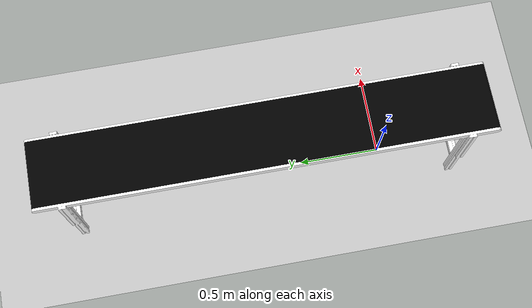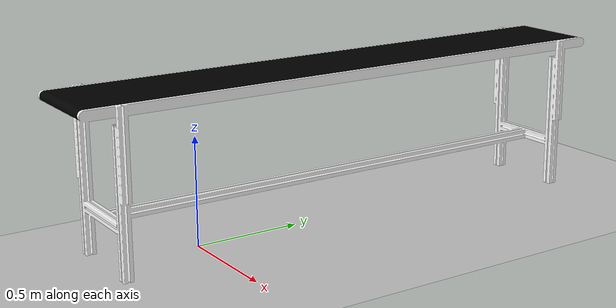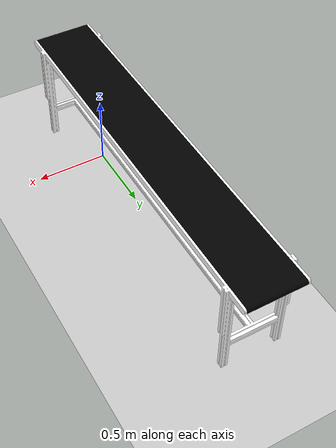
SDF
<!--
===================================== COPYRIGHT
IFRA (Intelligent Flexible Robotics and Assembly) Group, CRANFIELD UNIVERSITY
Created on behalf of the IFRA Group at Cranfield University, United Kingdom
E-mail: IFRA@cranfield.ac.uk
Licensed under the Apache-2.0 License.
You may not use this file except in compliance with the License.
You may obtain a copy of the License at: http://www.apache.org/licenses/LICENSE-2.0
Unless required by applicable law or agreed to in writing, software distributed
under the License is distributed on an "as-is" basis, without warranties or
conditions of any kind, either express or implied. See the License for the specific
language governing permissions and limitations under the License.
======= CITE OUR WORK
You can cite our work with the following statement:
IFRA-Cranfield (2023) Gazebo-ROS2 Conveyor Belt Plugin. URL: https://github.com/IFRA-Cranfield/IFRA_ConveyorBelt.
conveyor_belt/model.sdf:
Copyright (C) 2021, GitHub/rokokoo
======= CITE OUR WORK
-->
<?xml version="1.0" ?>

<sdf version="1.4">

  <world name="default">

    <!-- WORLD COMPONENTS: STANDARD -->

    <gravity>0 0 -9.8</gravity>

    <include>
      <uri>model://ground_plane</uri>
    </include>

    <include>
      <uri>model://sun</uri>
    </include>

    <scene>
      <shadows>0</shadows>
    </scene>

    <!-- Insert Conveyor Belt -->
    <include>
      <name>conveyor_belt</name>
      <pose>0 0 0 0 0 0 </pose>
      <uri>model://conveyor_belt</uri>
    </include>

  </world>

</sdf>

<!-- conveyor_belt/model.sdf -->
<sdf version="1.4">

    <model name="conveyor_belt">

        <model name="conveyorbelt_fixed">

            <static>true</static>

            <link name="belt_visual">
                <visual name="visual">
                    <geometry>
                        <mesh>
                            <scale>1 1 1</scale>
                            <uri>model://conveyor_belt/meshes/conveyor_belt.dae</uri>
                        </mesh>
                    </geometry>
                </visual>
                <collision name="collision">
                    <origin xyz="0.0 0.0 0" rpy="0.0 0.0 0.0"/>
                    <geometry>
                        <mesh>
                            <scale>1 1 1</scale>
                            <uri>model://conveyor_belt/meshes/conveyor_belt.dae</uri>
                        </mesh>
                    </geometry>
                </collision>
            </link>

        </model>

        <model name="conveyorbelt_moving">

            <allow_auto_disable>0</allow_auto_disable>
            <static>false</static>

            <pose>0 0.75 0.741 0.0 0.0 0.0</pose>

            <link name="belt_moving">
                <inertial>
                    <mass>100.0</mass>
                    <inertia>
                        <ixx>0.0</ixx>
                        <ixy>0.0</ixy>
                        <ixz>0.0</ixz>
                        <iyy>0.0</iyy>
                        <iyz>0.0</iyz>
                        <izz>0.0</izz>
                    </inertia>
                </inertial>
                <collision name="belt_collision">
                    <geometry>
                        <box>
                            <size>0.425 2.7 0.00001</size>
                        </box>
                    </geometry>
                    <surface>
                        <friction>
                            <ode>
                                <mu>100.0</mu>
                                <mu2>100.0</mu2>
                            </ode>
                            <torsional>
                                <coefficient>1000.0</coefficient>
                                <patch_radius>0.1</patch_radius>
                            </torsional>
                        </friction>
                    </surface>
                </collision>
            </link>

        </model>

        <joint name="belt_joint" type="prismatic">
            <parent>conveyorbelt_fixed::belt_visual</parent>
            <child>conveyorbelt_moving::belt_moving</child>
            <axis>
                <xyz>0 1 0</xyz>
                <limit>
                    <lower>0.0</lower>
                    <upper>0.01</upper>
                </limit>
            </axis>
        </joint>

        <plugin name="ros2_conveyorbelt_plugin" filename="libros2_conveyorbelt_plugin.so" >
            <ros>
                <namespace></namespace>
            </ros>
            <max_velocity>1.0</max_velocity>
            <publish_rate>1000</publish_rate>
        </plugin>

    </model>

</sdf>
